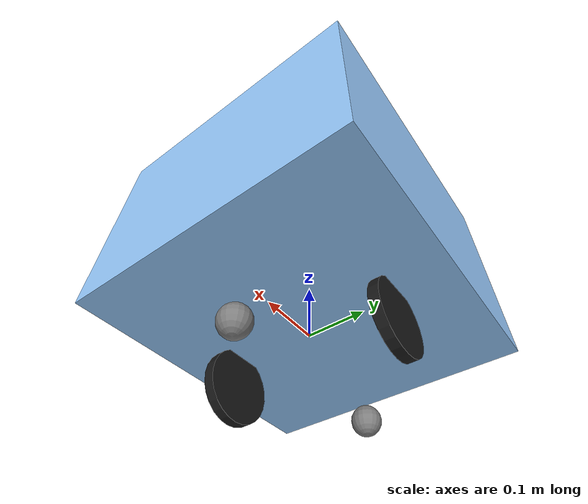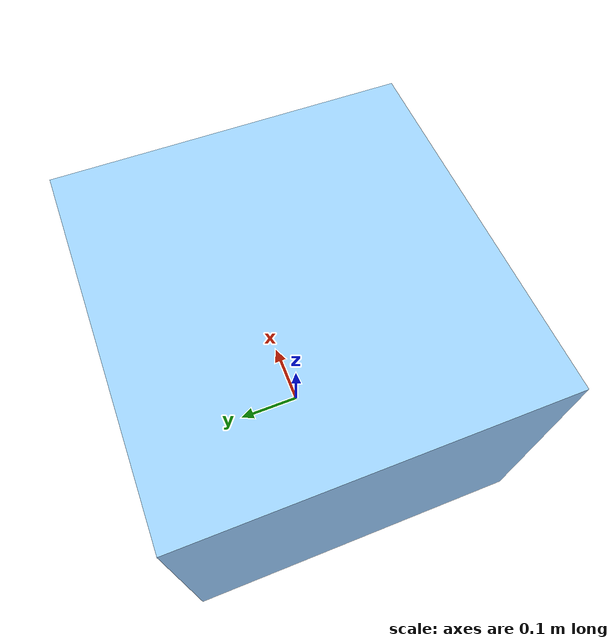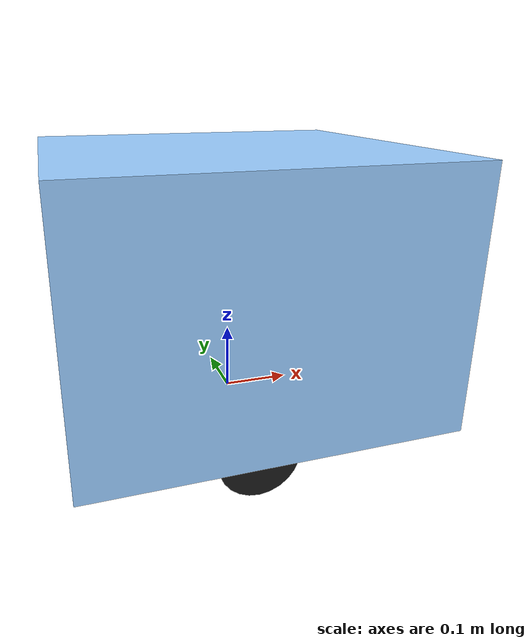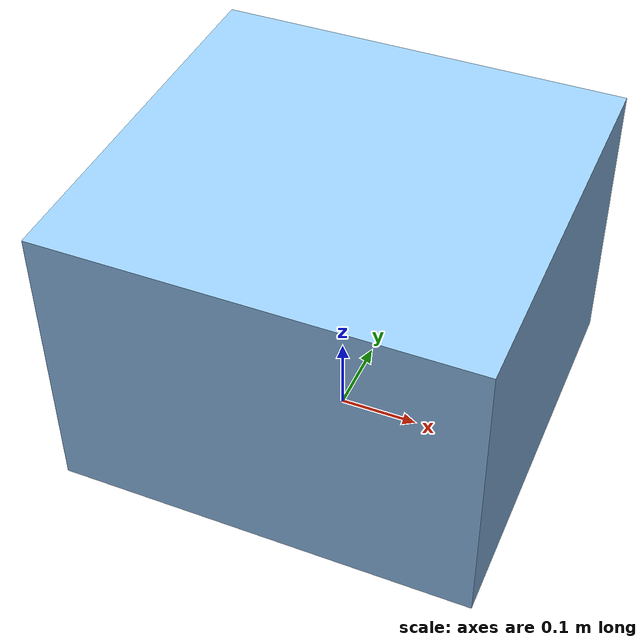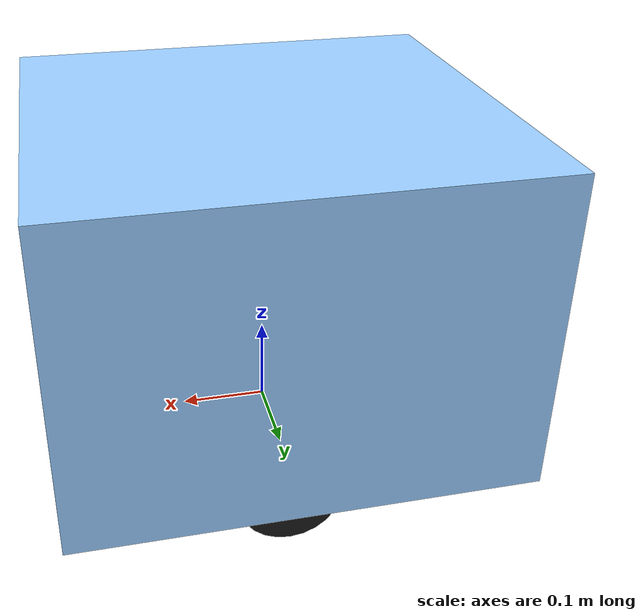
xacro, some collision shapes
<?xml version="1.0"?>
<robot xmlns:xacro="http://www.ros.org/wiki/xacro" name="hospobot">

    <xacro:property name="ref_height" value="0.1151"/>
    <xacro:property name="shell_l" value="0.520"/>
    <xacro:property name="shell_w" value="0.500"/>
    <xacro:property name="shell_h" value="0.368"/>

    <xacro:property name="wheel_radius" value="0.0625"/>
    <xacro:property name="track_width" value="0.300"/>
    <xacro:property name="axle_z_offset" value="-0.0526"/>

    <xacro:macro name="box_inertia" params="m w h d">
      <inertial>
        <origin xyz="0 0 0" rpy="0 0 0"/>
        <mass value="${m}"/>
        <inertia ixx="${(m/12) * (h*h + d*d)}" ixy="0.0" ixz="0.0" iyy="${(m/12) * (w*w + d*d)}" iyz="0.0" izz="${(m/12) * (w*w + h*h)}"/>
      </inertial>
    </xacro:macro>

    <xacro:macro name="cylinder_inertia" params="m r h">
      <inertial>
        <origin xyz="0 0 0" rpy="${pi/2} 0 0" />
        <mass value="${m}"/>
        <inertia ixx="${(m/12) * (3*r*r + h*h)}" ixy="0" ixz="0" iyy="${(m/12) * (3*r*r + h*h)}" iyz="0" izz="${(m/2) * (r*r)}"/>
      </inertial>
    </xacro:macro>

    <xacro:macro name="sphere_inertia" params="m r">
      <inertial>
        <mass value="${m}"/>
        <inertia ixx="${(2/5) * m * (r*r)}" ixy="0.0" ixz="0.0" iyy="${(2/5) * m * (r*r)}" iyz="0.0" izz="${(2/5) * m * (r*r)}"/>
      </inertial>
    </xacro:macro>

    <link name="base_footprint"/>

    <joint name="base_joint" type="fixed">
        <parent link="base_footprint"/>
        <child link="base_link"/>
        <origin xyz="0 0 ${ref_height - 0.10}" rpy="0 0 0"/>
    </joint>

    <link name="virtual_laser_link"/>
    <joint name="virtual_laser_joint" type="fixed">
        <parent link="base_footprint"/>
        <child link="virtual_laser_link"/>
        <origin xyz="0 0 0.001" rpy="0 0 0"/>
    </joint>

    <link name="base_link">
        <xacro:box_inertia m="10.0" w="${shell_w}" h="${shell_l}" d="${shell_h}"/>
        <visual>
            <origin xyz="0 0 ${shell_h/2 - 0.25}" rpy="0 0 ${pi/2}"/>
            <geometry><mesh filename="package://hospobot_description/meshes/HospoBot_Full_Model.stl"/></geometry>
            <material name="light_blue"><color rgba="0.6 0.8 1.0 1"/></material>
        </visual>
        <collision>
            <origin xyz="0 0 ${shell_h/2}" rpy="0 0 0"/>
            <geometry><box size="${shell_l} ${shell_w} ${shell_h}"/></geometry>
        </collision>
    </link>

    <xacro:macro name="wheel" params="prefix y_reflect">
        <link name="${prefix}_wheel">
            <visual>
                <origin xyz="0 0 0" rpy="${pi/2} 0 0"/>
                <geometry>
                    <cylinder radius="${wheel_radius}" length="0.0172"/>
                </geometry>
                <material name="black"><color rgba="0.1 0.1 0.1 1"/></material>
            </visual>
            <collision>
                <origin xyz="0 0 0" rpy="${pi/2} 0 0"/>
                <geometry>
                    <cylinder radius="${wheel_radius}" length="0.0172"/>
                </geometry>
            </collision>
            <xacro:cylinder_inertia m="1.0" r="${wheel_radius}" h="0.0172"/>
        </link>

        <joint name="${prefix}_wheel_joint" type="continuous">
            <parent link="base_link"/>
            <child link="${prefix}_wheel"/>
            <origin xyz="0 ${y_reflect * (track_width/2)} ${axle_z_offset}" rpy="0 0 0"/>
            <axis xyz="0 1 0"/>
        </joint>
    </xacro:macro>

    <xacro:wheel prefix="left" y_reflect="1" />
    <xacro:wheel prefix="right" y_reflect="-1" />

    <xacro:macro name="caster" params="prefix x_reflect">
        <link name="${prefix}_caster">
            <visual>
                <geometry><sphere radius="0.025"/></geometry>
                <material name="grey"><color rgba="0.5 0.5 0.5 1"/></material>
            </visual>
            <collision>
                <geometry><sphere radius="0.025"/></geometry>
            </collision>
            <xacro:sphere_inertia m="0.5" r="0.025"/>
        </link>
        <joint name="${prefix}_caster_joint" type="fixed">
            <parent link="base_link"/>
            <child link="${prefix}_caster"/>
            <origin xyz="${x_reflect * 0.160} 0 -0.0901" rpy="0 0 0"/>
        </joint>
    </xacro:macro>

    <xacro:caster prefix="front" x_reflect="1" />
    <xacro:caster prefix="back" x_reflect="-1" />

    <link name="laser_frame"/>
    <joint name="laser_joint" type="fixed">
        <parent link="base_link"/>
        <child link="laser_frame"/>
        <origin xyz="0 0 0.500" rpy="0 0 3.14159265"/>
    </joint>

    <link name="imu_link"/>
    <joint name="imu_joint" type="fixed">
        <parent link="base_link"/>
        <child link="imu_link"/>
        <origin xyz="0 0 -0.090" rpy="0 0 0"/>
    </joint>

    <link name="oakd_frame"/>
    <joint name="oakd_joint" type="fixed">
        <parent link="base_footprint"/>
        <child link="oakd_frame"/>
        <origin xyz="0.22 0 1.20813" rpy="0 0.34906585 0"/>
    </joint>
    <link name="oakd_optical_frame"/>
    <joint name="oakd_optical_joint" type="fixed">
        <parent link="oakd_frame"/>
        <child link="oakd_optical_frame"/>
        <origin xyz="0 0 0" rpy="-1.57079632679 0 -1.57079632679"/>
    </joint>

</robot>
